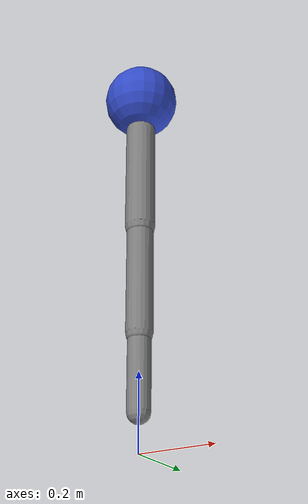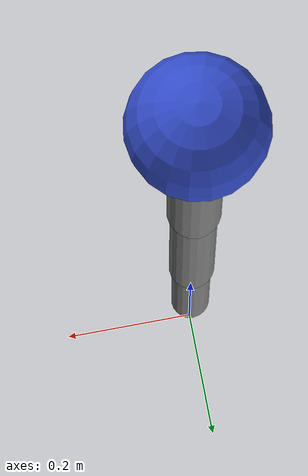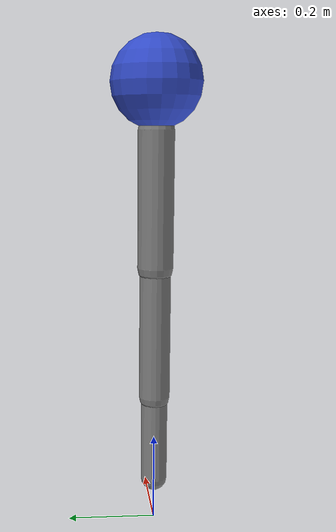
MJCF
<mujoco model="single_leg">
    <compiler angle="radian" />
    <option gravity="0 0 -9.81" />
    <worldbody>
        <body name="torso" pos="0 0 1.0">
            <joint name="root" type="free" />
            <geom type="sphere" size="0.1" rgba="0.2 0.3 0.8 1"/>
            <body name="hip" pos="0 0 -0.1">
                <joint name="hip" type="hinge" axis="1 0 0"/>
                <geom type="capsule" fromto="0 0 0 0 0 -0.3" size="0.04"/>
                <body name="knee" pos="0 0 -0.3">
                    <joint name="knee" type="hinge" axis="1 0 0"/>
                    <geom type="capsule" fromto="0 0 0 0 0 -0.3" size="0.035"/>
                    <body name="ankle" pos="0 0 -0.3">
                        <joint name="ankle" type="hinge" axis="1 0 0"/>
                        <geom type="capsule" fromto="0 0 0 0 0 -0.2" size="0.03"/>
                        <site name="foot" pos="0 0 -0.2" size="0.02" />
                    </body>
                </body>
            </body>
        </body>
    </worldbody>
    <actuator>
        <motor joint="hip" ctrlrange="-1 1"/>
        <motor joint="knee" ctrlrange="-1 1"/>
        <motor joint="ankle" ctrlrange="-1 1"/>
    </actuator>
</mujoco>
